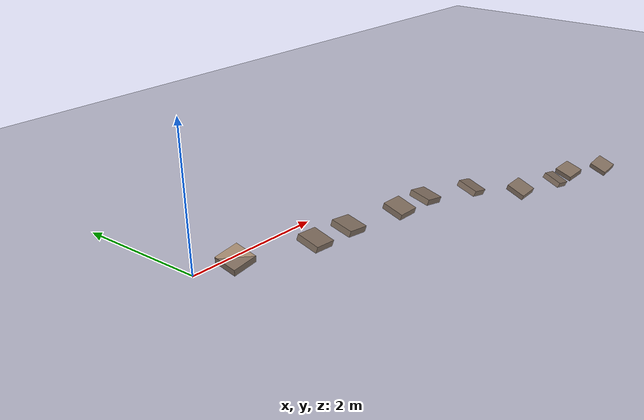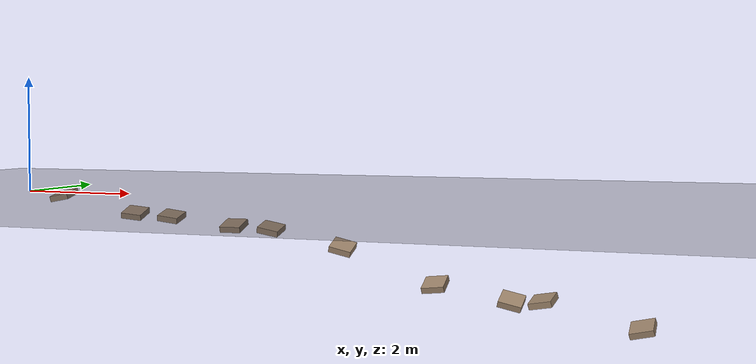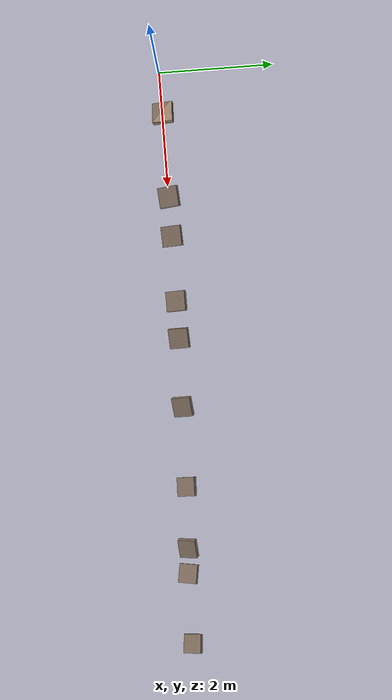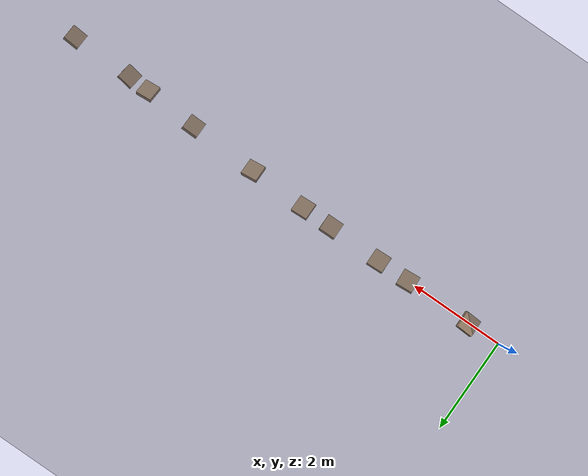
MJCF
<mujoco model="cvae_hard">
  <worldbody>
    <geom name="ground" type="plane" size="30 30 0.1" rgba="0.25 0.25 0.28 1"/>
    <geom name="stone0" type="box" size="0.180 0.180 0.050" pos="0.691 0.010 -0.053" quat="0.9896 0.1061 -0.0963 -0.0137" rgba="0.62 0.52 0.42 1"/>
    <geom name="stone1" type="box" size="0.180 0.180 0.050" pos="2.118 -0.010 -0.320" quat="0.9867 0.1515 0.0524 0.0275" rgba="0.62 0.52 0.42 1"/>
    <geom name="stone2" type="box" size="0.180 0.180 0.050" pos="2.817 -0.011 -0.356" quat="0.9901 0.1248 0.0642 0.0099" rgba="0.62 0.52 0.42 1"/>
    <geom name="stone3" type="box" size="0.180 0.180 0.050" pos="3.980 -0.029 -0.474" quat="0.9875 0.1576 -0.0012 0.0027" rgba="0.62 0.52 0.42 1"/>
    <geom name="stone4" type="box" size="0.180 0.180 0.050" pos="4.652 -0.031 -0.499" quat="0.9880 0.1219 0.0943 0.0081" rgba="0.62 0.52 0.42 1"/>
    <geom name="stone5" type="box" size="0.180 0.180 0.050" pos="5.908 -0.074 -0.747" quat="0.9768 0.1721 0.1248 0.0271" rgba="0.62 0.52 0.42 1"/>
    <geom name="stone6" type="box" size="0.180 0.180 0.050" pos="7.455 -0.142 -1.256" quat="0.9785 0.1986 -0.0567 -0.0007" rgba="0.62 0.52 0.42 1"/>
    <geom name="stone7" type="box" size="0.180 0.180 0.050" pos="8.665 -0.214 -1.436" quat="0.9739 0.1945 0.1163 0.0108" rgba="0.62 0.52 0.42 1"/>
    <geom name="stone8" type="box" size="0.180 0.180 0.050" pos="9.145 -0.243 -1.402" quat="0.9842 0.1278 -0.1045 -0.0635" rgba="0.62 0.52 0.42 1"/>
    <geom name="stone9" type="box" size="0.180 0.180 0.050" pos="10.599 -0.276 -1.720" quat="0.9757 0.1831 -0.1193 -0.0140" rgba="0.62 0.52 0.42 1"/>
  </worldbody>
</mujoco>
